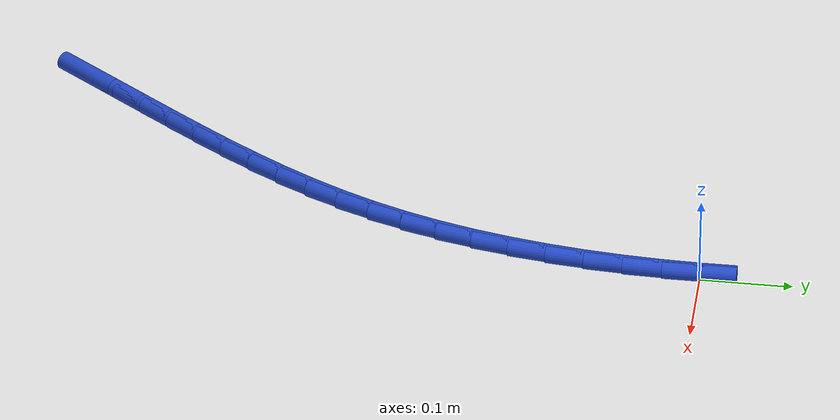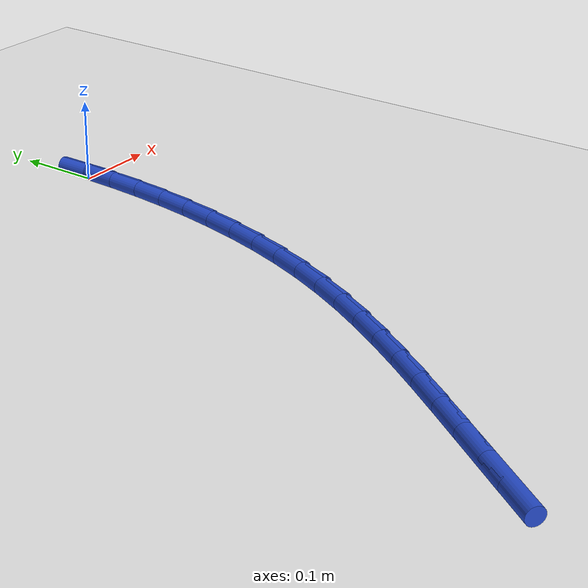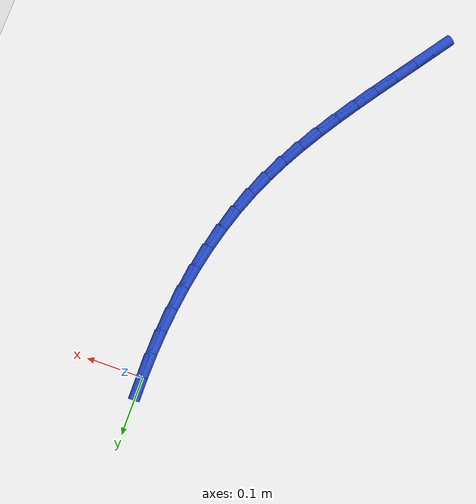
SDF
<sdf version="1.6">
 <world name="default">
  <model name="ground_plane">
   <static>1</static>
   <link name="link">
    <collision name="collision">
     <geometry><plane><normal>0 0 1</normal><size>100 100</size></plane></geometry>
     <surface><friction><ode><mu>100</mu><mu2>50</mu2></ode></friction></surface>
    </collision>
    <visual name="visual">
     <cast_shadows>0</cast_shadows>
     <geometry><plane><normal>0 0 1</normal><size>100 100</size></plane></geometry>
     <material>
      <script><uri>file://media/materials/scripts/gazebo.material</uri><name>Gazebo/WhiteGlow</name></script>
     </material>
    </visual>
   </link>
  </model>
  <model name="line">
   <link name="link_0">
    <pose>2.6020852139652106e-18 -6.938893903907228e-17 0.01 0 1.57 -1.563608734815264</pose>
    <collision name="collision">
     <geometry><cylinder><radius>0.01</radius><length>0.08</length></cylinder></geometry>
    </collision>
    <visual name="visual">
     <material>
      <script><name>Gazebo/Blue</name><uri>file://media/materials/scripts/gazebo.material</uri></script>
     </material>
     <geometry><cylinder><radius>0.01</radius><length>0.08</length></cylinder></geometry>
    </visual>
   </link>
   <link name="link_151">
    <pose>-0.2870185872916963 -0.7099906121228623 0.01 0 1.57 0.9486869711969826</pose>
    <collision name="collision">
     <geometry><cylinder><radius>0.01</radius><length>0.08</length></cylinder></geometry>
    </collision>
    <visual name="visual">
     <material>
      <script><name>Gazebo/Blue</name><uri>file://media/materials/scripts/gazebo.material</uri></script>
     </material>
     <geometry><cylinder><radius>0.01</radius><length>0.08</length></cylinder></geometry>
    </visual>
   </link>
   <link name="link_152">
    <pose>-0.2614520036647058 -0.6743377791879281 0.01 0 1.57 0.9475027153001798</pose>
    <collision name="collision">
     <geometry><cylinder><radius>0.01</radius><length>0.08</length></cylinder></geometry>
    </collision>
    <visual name="visual">
     <material>
      <script><name>Gazebo/Blue</name><uri>file://media/materials/scripts/gazebo.material</uri></script>
     </material>
     <geometry><cylinder><radius>0.01</radius><length>0.08</length></cylinder></geometry>
    </visual>
   </link>
   <link name="link_153">
    <pose>-0.2362659391146103 -0.6393032682852738 0.01 0 1.57 0.9499640451354892</pose>
    <collision name="collision">
     <geometry><cylinder><radius>0.01</radius><length>0.08</length></cylinder></geometry>
    </collision>
    <visual name="visual">
     <material>
      <script><name>Gazebo/Blue</name><uri>file://media/materials/scripts/gazebo.material</uri></script>
     </material>
     <geometry><cylinder><radius>0.01</radius><length>0.08</length></cylinder></geometry>
    </visual>
   </link>
   <link name="link_154">
    <pose>-0.21158864844066913 -0.6047975968234904 0.01 0 1.57 0.958621954559505</pose>
    <collision name="collision">
     <geometry><cylinder><radius>0.01</radius><length>0.08</length></cylinder></geometry>
    </collision>
    <visual name="visual">
     <material>
      <script><name>Gazebo/Blue</name><uri>file://media/materials/scripts/gazebo.material</uri></script>
     </material>
     <geometry><cylinder><radius>0.01</radius><length>0.08</length></cylinder></geometry>
    </visual>
   </link>
   <link name="link_155">
    <pose>-0.187593627808045 -0.5706244600545385 0.01 0 1.57 0.9737370626222451</pose>
    <collision name="collision">
     <geometry><cylinder><radius>0.01</radius><length>0.08</length></cylinder></geometry>
    </collision>
    <visual name="visual">
     <material>
      <script><name>Gazebo/Blue</name><uri>file://media/materials/scripts/gazebo.material</uri></script>
     </material>
     <geometry><cylinder><radius>0.01</radius><length>0.08</length></cylinder></geometry>
    </visual>
   </link>
   <link name="link_156">
    <pose>-0.16445437363865797 -0.536587552624134 0.01 0 1.57 0.9955155894020356</pose>
    <collision name="collision">
     <geometry><cylinder><radius>0.01</radius><length>0.08</length></cylinder></geometry>
    </collision>
    <visual name="visual">
     <material>
      <script><name>Gazebo/Blue</name><uri>file://media/materials/scripts/gazebo.material</uri></script>
     </material>
     <geometry><cylinder><radius>0.01</radius><length>0.08</length></cylinder></geometry>
    </visual>
   </link>
   <link name="link_157">
    <pose>-0.1423443823544281 -0.5024905691779936 0.01 0 1.57 1.0240820793812064</pose>
    <collision name="collision">
     <geometry><cylinder><radius>0.01</radius><length>0.08</length></cylinder></geometry>
    </collision>
    <visual name="visual">
     <material>
      <script><name>Gazebo/Blue</name><uri>file://media/materials/scripts/gazebo.material</uri></script>
     </material>
     <geometry><cylinder><radius>0.01</radius><length>0.08</length></cylinder></geometry>
    </visual>
   </link>
   <link name="link_158">
    <pose>-0.12143715037727497 -0.46813720436183315 0.01 0 1.57 1.0594425821693432</pose>
    <collision name="collision">
     <geometry><cylinder><radius>0.01</radius><length>0.08</length></cylinder></geometry>
    </collision>
    <visual name="visual">
     <material>
      <script><name>Gazebo/Blue</name><uri>file://media/materials/scripts/gazebo.material</uri></script>
     </material>
     <geometry><cylinder><radius>0.01</radius><length>0.08</length></cylinder></geometry>
    </visual>
   </link>
   <link name="link_159">
    <pose>-0.10190617412911938 -0.43333115282136986 0.01 0 1.57 1.1014406338767442</pose>
    <collision name="collision">
     <geometry><cylinder><radius>0.01</radius><length>0.08</length></cylinder></geometry>
    </collision>
    <visual name="visual">
     <material>
      <script><name>Gazebo/Blue</name><uri>file://media/materials/scripts/gazebo.material</uri></script>
     </material>
     <geometry><cylinder><radius>0.01</radius><length>0.08</length></cylinder></geometry>
    </visual>
   </link>
   <link name="link_160">
    <pose>-0.08392495003188105 -0.39787610920231975 0.01 0 1.57 1.14971186845993</pose>
    <collision name="collision">
     <geometry><cylinder><radius>0.01</radius><length>0.08</length></cylinder></geometry>
    </collision>
    <visual name="visual">
     <material>
      <script><name>Gazebo/Blue</name><uri>file://media/materials/scripts/gazebo.material</uri></script>
     </material>
     <geometry><cylinder><radius>0.01</radius><length>0.08</length></cylinder></geometry>
    </visual>
   </link>
   <link name="link_161">
    <pose>-0.06766697450747995 -0.3615757681503992 0.01 0 1.57 1.2023595864636334</pose>
    <collision name="collision">
     <geometry><cylinder><radius>0.01</radius><length>0.08</length></cylinder></geometry>
    </collision>
    <visual name="visual">
     <material>
      <script><name>Gazebo/Blue</name><uri>file://media/materials/scripts/gazebo.material</uri></script>
     </material>
     <geometry><cylinder><radius>0.01</radius><length>0.08</length></cylinder></geometry>
    </visual>
   </link>
   <link name="link_162">
    <pose>-0.05326890359041643 -0.3242814253562194 0.01 0 1.57 1.2536228519162944</pose>
    <collision name="collision">
     <geometry><cylinder><radius>0.01</radius><length>0.08</length></cylinder></geometry>
    </collision>
    <visual name="visual">
     <material>
      <script><name>Gazebo/Blue</name><uri>file://media/materials/scripts/gazebo.material</uri></script>
     </material>
     <geometry><cylinder><radius>0.01</radius><length>0.08</length></cylinder></geometry>
    </visual>
   </link>
   <link name="link_163">
    <pose>-0.040715962018411156 -0.2860400391638353 0.01 0 1.57 1.302158791551145</pose>
    <collision name="collision">
     <geometry><cylinder><radius>0.01</radius><length>0.08</length></cylinder></geometry>
    </collision>
    <visual name="visual">
     <material>
      <script><name>Gazebo/Blue</name><uri>file://media/materials/scripts/gazebo.material</uri></script>
     </material>
     <geometry><cylinder><radius>0.01</radius><length>0.08</length></cylinder></geometry>
    </visual>
   </link>
   <link name="link_164">
    <pose>-0.029954471326126005 -0.24694883430278725 0.01 0 1.57 1.3480761588089367</pose>
    <collision name="collision">
     <geometry><cylinder><radius>0.01</radius><length>0.08</length></cylinder></geometry>
    </collision>
    <visual name="visual">
     <material>
      <script><name>Gazebo/Blue</name><uri>file://media/materials/scripts/gazebo.material</uri></script>
     </material>
     <geometry><cylinder><radius>0.01</radius><length>0.08</length></cylinder></geometry>
    </visual>
   </link>
   <link name="link_165">
    <pose>-0.020930753019872638 -0.20710503553924345 0.01 0 1.57 1.3915131970040993</pose>
    <collision name="collision">
     <geometry><cylinder><radius>0.01</radius><length>0.08</length></cylinder></geometry>
    </collision>
    <visual name="visual">
     <material>
      <script><name>Gazebo/Blue</name><uri>file://media/materials/scripts/gazebo.material</uri></script>
     </material>
     <geometry><cylinder><radius>0.01</radius><length>0.08</length></cylinder></geometry>
    </visual>
   </link>
   <link name="link_166">
    <pose>-0.013591128605963 -0.1666058676393729 0.01 0 1.57 1.4326277107526162</pose>
    <collision name="collision">
     <geometry><cylinder><radius>0.01</radius><length>0.08</length></cylinder></geometry>
    </collision>
    <visual name="visual">
     <material>
      <script><name>Gazebo/Blue</name><uri>file://media/materials/scripts/gazebo.material</uri></script>
     </material>
     <geometry><cylinder><radius>0.01</radius><length>0.08</length></cylinder></geometry>
    </visual>
   </link>
   <link name="link_167">
    <pose>-0.007881919590708997 -0.1255485553693445 0.01 0 1.57 1.4715891671049375</pose>
    <collision name="collision">
     <geometry><cylinder><radius>0.01</radius><length>0.08</length></cylinder></geometry>
    </collision>
    <visual name="visual">
     <material>
      <script><name>Gazebo/Blue</name><uri>file://media/materials/scripts/gazebo.material</uri></script>
     </material>
     <geometry><cylinder><radius>0.01</radius><length>0.08</length></cylinder></geometry>
    </visual>
   </link>
   <link name="link_168">
    <pose>-0.0037494474804224804 -0.08403032349532626 0.01 0 1.57 1.5085727057021994</pose>
    <collision name="collision">
     <geometry><cylinder><radius>0.01</radius><length>0.08</length></cylinder></geometry>
    </collision>
    <visual name="visual">
     <material>
      <script><name>Gazebo/Blue</name><uri>file://media/materials/scripts/gazebo.material</uri></script>
     </material>
     <geometry><cylinder><radius>0.01</radius><length>0.08</length></cylinder></geometry>
    </visual>
   </link>
   <link name="link_169">
    <pose>-0.001140033781415536 -0.042148396783488674 0.01 0 1.57 1.543754826420717</pose>
    <collision name="collision">
     <geometry><cylinder><radius>0.01</radius><length>0.08</length></cylinder></geometry>
    </collision>
    <visual name="visual">
     <material>
      <script><name>Gazebo/Blue</name><uri>file://media/materials/scripts/gazebo.material</uri></script>
     </material>
     <geometry><cylinder><radius>0.01</radius><length>0.08</length></cylinder></geometry>
    </visual>
   </link>
   <link name="link_170">
    <pose>7.806255641895632e-18 1.3877787807814457e-17 0.01 0 1.57 -1.5642821702960852</pose>
    <collision name="collision">
     <geometry><cylinder><radius>0.01</radius><length>0.08</length></cylinder></geometry>
    </collision>
    <visual name="visual">
     <material>
      <script><name>Gazebo/Blue</name><uri>file://media/materials/scripts/gazebo.material</uri></script>
     </material>
     <geometry><cylinder><radius>0.01</radius><length>0.08</length></cylinder></geometry>
    </visual>
   </link>
  </model>
 </world>
</sdf>
